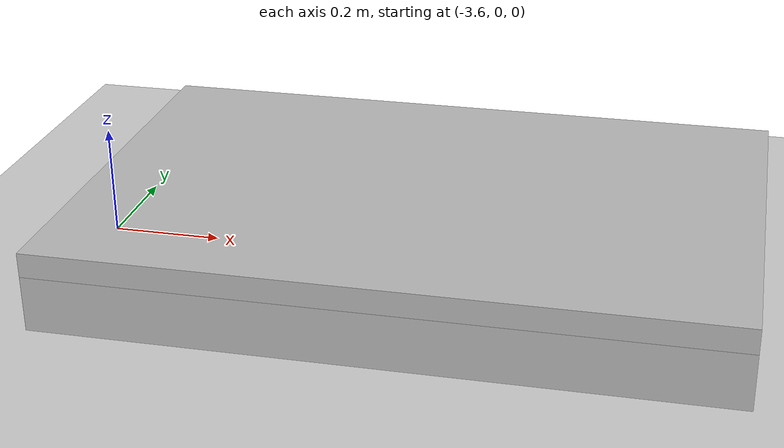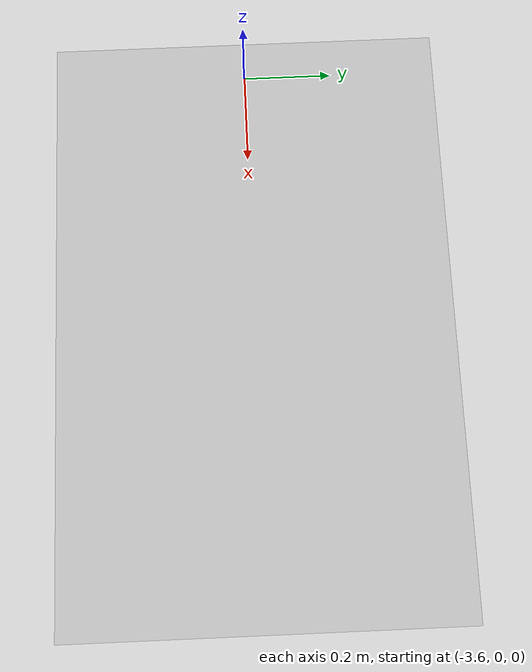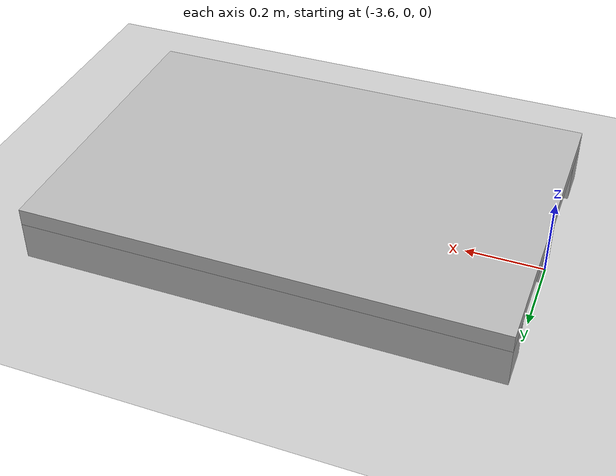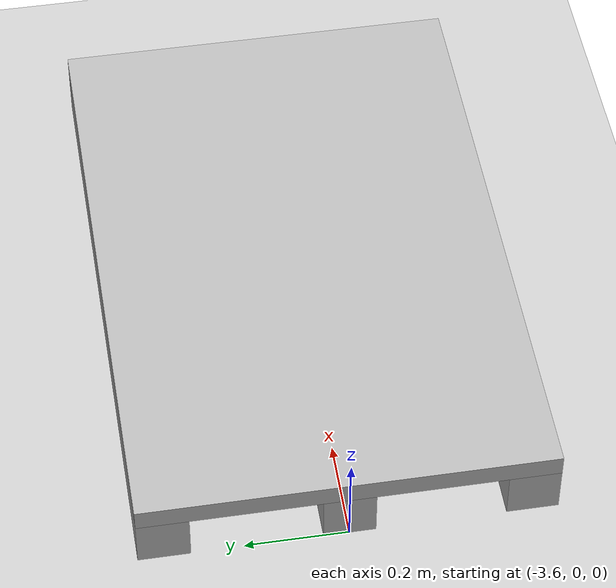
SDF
<?xml version="1.0" ?>
 <sdf version='1.6'>
  <world name='default'>
    <light name='sun' type='directional'>
      <cast_shadows>1</cast_shadows>
      <pose frame=''>0 0 10 0 -0 0</pose>
      <diffuse>0.8 0.8 0.8 1</diffuse>
      <specular>0.1 0.1 0.1 1</specular>
      <attenuation>
        <range>1000</range>
        <constant>0.9</constant>
        <linear>0.01</linear>
        <quadratic>0.001</quadratic>
      </attenuation>
      <direction>-0.5 0.5 -1</direction>
    </light>
    <model name='ground_plane'>
      <static>1</static>
      <link name='link'>
        <collision name='collision'>
          <geometry>
            <plane>
              <normal>0 0 1</normal>
              <size>100 100</size>
            </plane>
          </geometry>
          <surface>
            <friction>
              <ode>
                <mu>100</mu>
                <mu2>50</mu2>
              </ode>
              <torsional>
                <ode/>
              </torsional>
            </friction>
            <contact>
              <ode/>
            </contact>
            <bounce/>
          </surface>
          <max_contacts>10</max_contacts>
        </collision>
        <visual name='visual'>
          <cast_shadows>0</cast_shadows>
          <geometry>
            <plane>
              <normal>0 0 1</normal>
              <size>100 100</size>
            </plane>
          </geometry>
          <material>
            <script>
              <uri>file://media/materials/scripts/gazebo.material</uri>
              <name>Gazebo/Grey</name>
            </script>
          </material>
        </visual>
        <self_collide>0</self_collide>
        <kinematic>0</kinematic>
        <gravity>1</gravity>
      </link>
    </model>
    <gravity>0 0 -9.8</gravity>
    <magnetic_field>6e-06 2.3e-05 -4.2e-05</magnetic_field>
    <atmosphere type='adiabatic'/>
    <physics name='default_physics' default='0' type='ode'>
      <max_step_size>0.001</max_step_size>
      <real_time_factor>1</real_time_factor>
      <real_time_update_rate>1000</real_time_update_rate>
    </physics>
    <scene>
      <ambient>0.4 0.4 0.4 1</ambient>
      <background>0.7 0.7 0.7 1</background>
      <shadows>1</shadows>
    </scene>
    <spherical_coordinates>
      <surface_model>EARTH_WGS84</surface_model>
      <latitude_deg>0</latitude_deg>
      <longitude_deg>0</longitude_deg>
      <elevation>0</elevation>
      <heading_deg>0</heading_deg>
    </spherical_coordinates>
    <model name='epal_pallet'>
      <link name='base_link'>
        <pose frame=''>0 0 0 0 -0 0</pose>
        <inertial>
          <pose frame=''>0 0 0.095 0 -0 0</pose>
          <mass>8</mass>
          <inertia>
            <ixx>0.973027</ixx>
            <ixy>0</ixy>
            <ixz>0</ixz>
            <iyy>1.48389</iyy>
            <iyz>0</iyz>
            <izz>0.517473</izz>
          </inertia>
        </inertial>
        <self_collide>0</self_collide>
        <enable_wind>0</enable_wind>
        <kinematic>0</kinematic>
        <visual name='base_link_fixed_joint_lump__central_foot_link_visual'>
          <pose frame=''>0 0 0.05 0 -0 0</pose>
          <geometry>
            <box>
              <size>0.1 1.2 0.1</size>
            </box>
          </geometry>
          <material>
            <shader type='pixel'/>
          </material>
          <transparency>0</transparency>
          <cast_shadows>1</cast_shadows>
        </visual>
        <visual name='base_link_fixed_joint_lump__cover_link_visual_1'>
          <pose frame=''>0 0 0.122 0 -0 0</pose>
          <geometry>
            <box>
              <size>0.8 1.2 0.044</size>
            </box>
          </geometry>
          <material>
            <shader type='pixel'/>
          </material>
          <transparency>0</transparency>
          <cast_shadows>1</cast_shadows>
        </visual>
        <visual name='base_link_fixed_joint_lump__left_foot_link_visual_2'>
          <pose frame=''>-0.35 0 0.05 0 -0 0</pose>
          <geometry>
            <box>
              <size>0.1 1.2 0.1</size>
            </box>
          </geometry>
          <material>
            <shader type='pixel'/>
          </material>
          <transparency>0</transparency>
          <cast_shadows>1</cast_shadows>
        </visual>
        <visual name='base_link_fixed_joint_lump__right_foot_link_visual_3'>
          <pose frame=''>0.35 0 0.05 0 -0 0</pose>
          <geometry>
            <box>
              <size>0.1 1.2 0.1</size>
            </box>
          </geometry>
          <material>
            <shader type='pixel'/>
          </material>
          <transparency>0</transparency>
          <cast_shadows>1</cast_shadows>
        </visual>
        <collision name='base_link_fixed_joint_lump__central_foot_link_collision'>
          <laser_retro>0</laser_retro>
          <max_contacts>10</max_contacts>
          <pose frame=''>0 0 0.05 0 -0 0</pose>
          <geometry>
            <box>
              <size>0.1 1.2 0.1</size>
            </box>
          </geometry>
          <surface>
            <friction>
              <ode>
                <mu>1</mu>
                <mu2>1</mu2>
                <fdir1>0 0 0</fdir1>
                <slip1>0</slip1>
                <slip2>0</slip2>
              </ode>
              <torsional>
                <coefficient>1</coefficient>
                <patch_radius>0</patch_radius>
                <surface_radius>0</surface_radius>
                <use_patch_radius>1</use_patch_radius>
                <ode>
                  <slip>0</slip>
                </ode>
              </torsional>
            </friction>
            <bounce>
              <restitution_coefficient>0</restitution_coefficient>
              <threshold>1e+06</threshold>
            </bounce>
            <contact>
              <collide_without_contact>0</collide_without_contact>
              <collide_without_contact_bitmask>1</collide_without_contact_bitmask>
              <collide_bitmask>1</collide_bitmask>
              <ode>
                <soft_cfm>0</soft_cfm>
                <soft_erp>0.2</soft_erp>
                <kp>1e+13</kp>
                <kd>1</kd>
                <max_vel>0.01</max_vel>
                <min_depth>0</min_depth>
              </ode>
              <bullet>
                <split_impulse>1</split_impulse>
                <split_impulse_penetration_threshold>-0.01</split_impulse_penetration_threshold>
                <soft_cfm>0</soft_cfm>
                <soft_erp>0.2</soft_erp>
                <kp>1e+13</kp>
                <kd>1</kd>
              </bullet>
            </contact>
          </surface>
        </collision>
        <collision name='base_link_fixed_joint_lump__cover_link_collision_1'>
          <laser_retro>0</laser_retro>
          <max_contacts>10</max_contacts>
          <pose frame=''>0 0 0.122 0 -0 0</pose>
          <geometry>
            <box>
              <size>0.8 1.2 0.044</size>
            </box>
          </geometry>
          <surface>
            <friction>
              <ode>
                <mu>1</mu>
                <mu2>1</mu2>
                <fdir1>0 0 0</fdir1>
                <slip1>0</slip1>
                <slip2>0</slip2>
              </ode>
              <torsional>
                <coefficient>1</coefficient>
                <patch_radius>0</patch_radius>
                <surface_radius>0</surface_radius>
                <use_patch_radius>1</use_patch_radius>
                <ode>
                  <slip>0</slip>
                </ode>
              </torsional>
            </friction>
            <bounce>
              <restitution_coefficient>0</restitution_coefficient>
              <threshold>1e+06</threshold>
            </bounce>
            <contact>
              <collide_without_contact>0</collide_without_contact>
              <collide_without_contact_bitmask>1</collide_without_contact_bitmask>
              <collide_bitmask>1</collide_bitmask>
              <ode>
                <soft_cfm>0</soft_cfm>
                <soft_erp>0.2</soft_erp>
                <kp>1e+13</kp>
                <kd>1</kd>
                <max_vel>0.01</max_vel>
                <min_depth>0</min_depth>
              </ode>
              <bullet>
                <split_impulse>1</split_impulse>
                <split_impulse_penetration_threshold>-0.01</split_impulse_penetration_threshold>
                <soft_cfm>0</soft_cfm>
                <soft_erp>0.2</soft_erp>
                <kp>1e+13</kp>
                <kd>1</kd>
              </bullet>
            </contact>
          </surface>
        </collision>
        <collision name='base_link_fixed_joint_lump__right_foot_link_collision_3'>
          <laser_retro>0</laser_retro>
          <max_contacts>10</max_contacts>
          <pose frame=''>0.35 0 0.05 0 -0 0</pose>
          <geometry>
            <box>
              <size>0.1 1.2 0.1</size>
            </box>
          </geometry>
          <surface>
            <friction>
              <ode>
                <mu>1</mu>
                <mu2>1</mu2>
                <fdir1>0 0 0</fdir1>
                <slip1>0</slip1>
                <slip2>0</slip2>
              </ode>
              <torsional>
                <coefficient>1</coefficient>
                <patch_radius>0</patch_radius>
                <surface_radius>0</surface_radius>
                <use_patch_radius>1</use_patch_radius>
                <ode>
                  <slip>0</slip>
                </ode>
              </torsional>
            </friction>
            <bounce>
              <restitution_coefficient>0</restitution_coefficient>
              <threshold>1e+06</threshold>
            </bounce>
            <contact>
              <collide_without_contact>0</collide_without_contact>
              <collide_without_contact_bitmask>1</collide_without_contact_bitmask>
              <collide_bitmask>1</collide_bitmask>
              <ode>
                <soft_cfm>0</soft_cfm>
                <soft_erp>0.2</soft_erp>
                <kp>1e+13</kp>
                <kd>1</kd>
                <max_vel>0.01</max_vel>
                <min_depth>0</min_depth>
              </ode>
              <bullet>
                <split_impulse>1</split_impulse>
                <split_impulse_penetration_threshold>-0.01</split_impulse_penetration_threshold>
                <soft_cfm>0</soft_cfm>
                <soft_erp>0.2</soft_erp>
                <kp>1e+13</kp>
                <kd>1</kd>
              </bullet>
            </contact>
          </surface>
        </collision>
        <collision name='base_link_fixed_joint_lump__left_foot_link_collision_2'>
          <laser_retro>0</laser_retro>
          <max_contacts>10</max_contacts>
          <pose frame=''>-0.35 0 0.05 0 -0 0</pose>
          <geometry>
            <box>
              <size>0.1 1.2 0.1</size>
            </box>
          </geometry>
          <surface>
            <friction>
              <ode>
                <mu>1</mu>
                <mu2>1</mu2>
                <fdir1>0 0 0</fdir1>
                <slip1>0</slip1>
                <slip2>0</slip2>
              </ode>
              <torsional>
                <coefficient>1</coefficient>
                <patch_radius>0</patch_radius>
                <surface_radius>0</surface_radius>
                <use_patch_radius>1</use_patch_radius>
                <ode>
                  <slip>0</slip>
                </ode>
              </torsional>
            </friction>
            <bounce>
              <restitution_coefficient>0</restitution_coefficient>
              <threshold>1e+06</threshold>
            </bounce>
            <contact>
              <collide_without_contact>0</collide_without_contact>
              <collide_without_contact_bitmask>1</collide_without_contact_bitmask>
              <collide_bitmask>1</collide_bitmask>
              <ode>
                <soft_cfm>0</soft_cfm>
                <soft_erp>0.2</soft_erp>
                <kp>1e+13</kp>
                <kd>1</kd>
                <max_vel>0.01</max_vel>
                <min_depth>0</min_depth>
              </ode>
              <bullet>
                <split_impulse>1</split_impulse>
                <split_impulse_penetration_threshold>-0.01</split_impulse_penetration_threshold>
                <soft_cfm>0</soft_cfm>
                <soft_erp>0.2</soft_erp>
                <kp>1e+13</kp>
                <kd>1</kd>
              </bullet>
            </contact>
          </surface>
        </collision>
      </link>
      <static>0</static>
      <allow_auto_disable>1</allow_auto_disable>
      <pose frame=''>-3 0 0 0 0 1.570796</pose>
    </model>
    <gui fullscreen='0'>
      <camera name='user_camera'>
        <pose frame=''>-3.68793 -8.35797 3.05193 0 0.341796 1.36758</pose>
        <view_controller>orbit</view_controller>
        <projection_type>perspective</projection_type>
      </camera>
    </gui>
  </world>
 </sdf>
